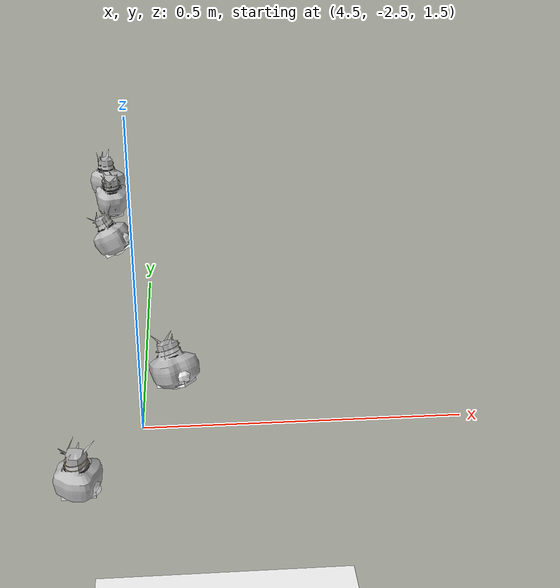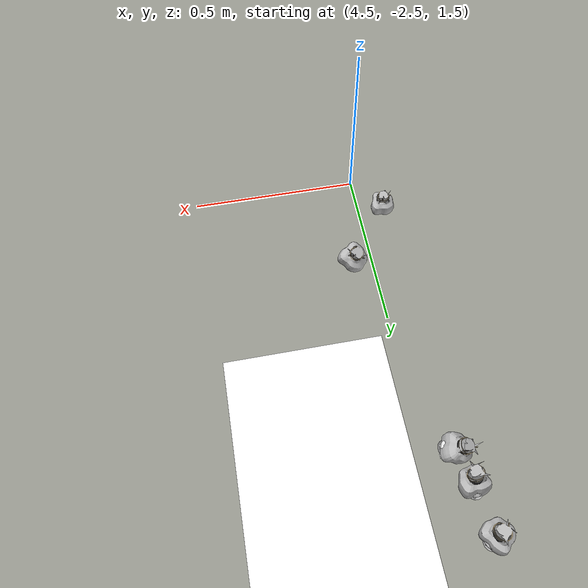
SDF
<sdf version="1.11">
 <world name="peach_orchard">
  <model name="ground">
   <static>true</static>
   <link name="link">
    <visual name="soil">
     <geometry><plane><normal>0 0 1</normal><size>32 22</size></plane></geometry>
     <material>
      <ambient>1 1 1 1</ambient>
      <diffuse>1 1 1 1</diffuse>
      <specular>0.1 0.1 0.1 1</specular>
      <pbr>
       <metal>
        <albedo_map>textures/soil_albedo.png</albedo_map>
        <normal_map type="tangent">textures/soil_normal.png</normal_map>
        <roughness>0.95</roughness>
        <metalness>0</metalness>
       </metal>
      </pbr>
     </material>
    </visual>
    <collision name="c_soil">
     <geometry><plane><normal>0 0 1</normal><size>32 22</size></plane></geometry>
    </collision>
   </link>
  </model>
  <model name="peach_tree_r3_t2_00">
   <pose>4.55 -2.25901 1.42221 0 0.351696 2.20699</pose>
   <static>true</static>
   <link name="bag">
    <visual name="bag_mesh">
     <pose>0 0 0.0402073 0 0 0</pose>
     <geometry>
      <mesh><uri>model://peach_sim/meshes/bagged_peach.glb</uri><scale>1.08824 1.2067 0.913803</scale></mesh>
     </geometry>
    </visual>
    <visual name="body">
     <pose>0 0 0.0222073 0 0 0</pose>
     <geometry><ellipsoid><radii>0.040809 0.0313742 0.0239839</radii></ellipsoid></geometry>
     <material>
      <ambient>1 1 1 1</ambient>
      <diffuse>1 1 1 1</diffuse>
      <specular>0.1 0.1 0.1 1</specular>
      <pbr>
       <metal>
        <albedo_map>textures/paper_bag_albedo.png</albedo_map>
        <normal_map type="tangent">textures/paper_bag_normal.png</normal_map>
        <roughness>0.72</roughness>
        <metalness>0</metalness>
       </metal>
      </pbr>
     </material>
    </visual>
    <visual name="bottom_fold">
     <pose>0 0 0.012 0 0 0.35</pose>
     <geometry><box><size>0.063254 0.0360804 0.022</size></box></geometry>
     <material>
      <ambient>1 1 1 1</ambient>
      <diffuse>1 1 1 1</diffuse>
      <specular>0.1 0.1 0.1 1</specular>
      <pbr>
       <metal>
        <albedo_map>textures/paper_bag_albedo.png</albedo_map>
        <normal_map type="tangent">textures/paper_bag_normal.png</normal_map>
        <roughness>0.8</roughness>
        <metalness>0</metalness>
       </metal>
      </pbr>
     </material>
    </visual>
    <visual name="fruit">
     <pose>0 0 0.0187764 0 0 0</pose>
     <geometry><sphere><radius>0.0257675</radius></sphere></geometry>
     <material>
      <ambient>1 1 1 1</ambient>
      <diffuse>1 1 1 1</diffuse>
      <specular>0.1 0.1 0.1 1</specular>
      <pbr>
       <metal>
        <albedo_map>textures/fruit_skin_albedo.png</albedo_map>
        <normal_map type="tangent">textures/fruit_skin_normal.png</normal_map>
        <roughness>0.55</roughness>
        <metalness>0</metalness>
       </metal>
      </pbr>
     </material>
    </visual>
    <visual name="neck">
     <pose>0 0 0.0534146 0 0 0</pose>
     <geometry><cylinder><radius>0.013</radius><length>0.018</length></cylinder></geometry>
     <material>
      <ambient>1 1 1 1</ambient>
      <diffuse>1 1 1 1</diffuse>
      <specular>0.1 0.1 0.1 1</specular>
      <pbr>
       <metal>
        <albedo_map>textures/paper_bag_albedo.png</albedo_map>
        <normal_map type="tangent">textures/paper_bag_normal.png</normal_map>
        <roughness>0.75</roughness>
        <metalness>0</metalness>
       </metal>
      </pbr>
     </material>
    </visual>
    <visual name="gather">
     <pose>0 0 0.0344146 0 0 0</pose>
     <geometry><cylinder><radius>0.019</radius><length>0.02</length></cylinder></geometry>
     <material>
      <ambient>1 1 1 1</ambient>
      <diffuse>1 1 1 1</diffuse>
      <specular>0.1 0.1 0.1 1</specular>
      <pbr>
       <metal>
        <albedo_map>textures/paper_bag_albedo.png</albedo_map>
        <normal_map type="tangent">textures/paper_bag_normal.png</normal_map>
        <roughness>0.8</roughness>
        <metalness>0</metalness>
       </metal>
      </pbr>
     </material>
    </visual>
    <visual name="inner_paper">
     <pose>0 0 0.0584146 0 0 0</pose>
     <geometry><cylinder><radius>0.01</radius><length>0.008</length></cylinder></geometry>
     <material>
      <ambient>0.180392 0.14902 0.133333 1</ambient>
      <diffuse>0.180392 0.14902 0.133333 1</diffuse>
      <specular>0.1 0.1 0.1 1</specular>
     </material>
    </visual>
    <visual name="wire_0">
     <pose>0 0 0.0484146 0 0 0</pose>
     <geometry><cylinder><radius>0.0205</radius><length>0.0035</length></cylinder></geometry>
     <material>
      <ambient>0.25 0.25 0.25 1</ambient>
      <diffuse>0.25 0.25 0.25 1</diffuse>
      <specular>0.1 0.1 0.1 1</specular>
     </material>
    </visual>
    <visual name="wire_1">
     <pose>0 0 0.0554146 0 0 0</pose>
     <geometry><cylinder><radius>0.0205</radius><length>0.0035</length></cylinder></geometry>
     <material>
      <ambient>0.25 0.25 0.25 1</ambient>
      <diffuse>0.25 0.25 0.25 1</diffuse>
      <specular>0.1 0.1 0.1 1</specular>
     </material>
    </visual>
    <visual name="wire_tail">
     <pose>0.01 0 0.0564146 0 0.521618 0</pose>
     <geometry><cylinder><radius>0.0012</radius><length>0.026</length></cylinder></geometry>
     <material>
      <ambient>0.25 0.25 0.25 1</ambient>
      <diffuse>0.25 0.25 0.25 1</diffuse>
      <specular>0.1 0.1 0.1 1</specular>
     </material>
    </visual>
    <collision name="c_body">
     <pose>0 0 0.0222073 0 0 0</pose>
     <geometry><cylinder><radius>0.040809</radius><length>0.0444146</length></cylinder></geometry>
    </collision>
   </link>
  </model>
  <model name="peach_tree_r3_t2_04">
   <pose>4.38905 -2.48202 1.36413 0 0.0106714 2.83871</pose>
   <static>true</static>
   <link name="bag">
    <visual name="bag_mesh">
     <pose>0 0 0.0392174 0 0 0</pose>
     <geometry>
      <mesh><uri>model://peach_sim/meshes/bagged_peach.glb</uri><scale>0.959384 1.14505 0.891304</scale></mesh>
     </geometry>
    </visual>
    <visual name="body">
     <pose>0 0 0.0212174 0 0 0</pose>
     <geometry><ellipsoid><radii>0.0359769 0.0297714 0.0229148</radii></ellipsoid></geometry>
     <material>
      <ambient>1 1 1 1</ambient>
      <diffuse>1 1 1 1</diffuse>
      <specular>0.1 0.1 0.1 1</specular>
      <pbr>
       <metal>
        <albedo_map>textures/paper_bag_albedo.png</albedo_map>
        <normal_map type="tangent">textures/paper_bag_normal.png</normal_map>
        <roughness>0.72</roughness>
        <metalness>0</metalness>
       </metal>
      </pbr>
     </material>
    </visual>
    <visual name="bottom_fold">
     <pose>0 0 0.012 0 0 0.35</pose>
     <geometry><box><size>0.0557642 0.0342371 0.022</size></box></geometry>
     <material>
      <ambient>1 1 1 1</ambient>
      <diffuse>1 1 1 1</diffuse>
      <specular>0.1 0.1 0.1 1</specular>
      <pbr>
       <metal>
        <albedo_map>textures/paper_bag_albedo.png</albedo_map>
        <normal_map type="tangent">textures/paper_bag_normal.png</normal_map>
        <roughness>0.8</roughness>
        <metalness>0</metalness>
       </metal>
      </pbr>
     </material>
    </visual>
    <visual name="fruit">
     <pose>0 0 0.0191488 0 0 0</pose>
     <geometry><sphere><radius>0.0261548</radius></sphere></geometry>
     <material>
      <ambient>1 1 1 1</ambient>
      <diffuse>1 1 1 1</diffuse>
      <specular>0.1 0.1 0.1 1</specular>
      <pbr>
       <metal>
        <albedo_map>textures/fruit_skin_albedo.png</albedo_map>
        <normal_map type="tangent">textures/fruit_skin_normal.png</normal_map>
        <roughness>0.55</roughness>
        <metalness>0</metalness>
       </metal>
      </pbr>
     </material>
    </visual>
    <visual name="neck">
     <pose>0 0 0.0514348 0 0 0</pose>
     <geometry><cylinder><radius>0.013</radius><length>0.018</length></cylinder></geometry>
     <material>
      <ambient>1 1 1 1</ambient>
      <diffuse>1 1 1 1</diffuse>
      <specular>0.1 0.1 0.1 1</specular>
      <pbr>
       <metal>
        <albedo_map>textures/paper_bag_albedo.png</albedo_map>
        <normal_map type="tangent">textures/paper_bag_normal.png</normal_map>
        <roughness>0.75</roughness>
        <metalness>0</metalness>
       </metal>
      </pbr>
     </material>
    </visual>
    <visual name="gather">
     <pose>0 0 0.0324348 0 0 0</pose>
     <geometry><cylinder><radius>0.019</radius><length>0.02</length></cylinder></geometry>
     <material>
      <ambient>1 1 1 1</ambient>
      <diffuse>1 1 1 1</diffuse>
      <specular>0.1 0.1 0.1 1</specular>
      <pbr>
       <metal>
        <albedo_map>textures/paper_bag_albedo.png</albedo_map>
        <normal_map type="tangent">textures/paper_bag_normal.png</normal_map>
        <roughness>0.8</roughness>
        <metalness>0</metalness>
       </metal>
      </pbr>
     </material>
    </visual>
    <visual name="inner_paper">
     <pose>0 0 0.0564348 0 0 0</pose>
     <geometry><cylinder><radius>0.01</radius><length>0.008</length></cylinder></geometry>
     <material>
      <ambient>0.180392 0.14902 0.133333 1</ambient>
      <diffuse>0.180392 0.14902 0.133333 1</diffuse>
      <specular>0.1 0.1 0.1 1</specular>
     </material>
    </visual>
    <visual name="wire_0">
     <pose>0 0 0.0464348 0 0 0</pose>
     <geometry><cylinder><radius>0.0205</radius><length>0.0035</length></cylinder></geometry>
     <material>
      <ambient>0.25 0.25 0.25 1</ambient>
      <diffuse>0.25 0.25 0.25 1</diffuse>
      <specular>0.1 0.1 0.1 1</specular>
     </material>
    </visual>
    <visual name="wire_1">
     <pose>0 0 0.0534348 0 0 0</pose>
     <geometry><cylinder><radius>0.0205</radius><length>0.0035</length></cylinder></geometry>
     <material>
      <ambient>0.25 0.25 0.25 1</ambient>
      <diffuse>0.25 0.25 0.25 1</diffuse>
      <specular>0.1 0.1 0.1 1</specular>
     </material>
    </visual>
    <visual name="wire_tail">
     <pose>0.01 0 0.0544348 0 0.521618 0</pose>
     <geometry><cylinder><radius>0.0012</radius><length>0.026</length></cylinder></geometry>
     <material>
      <ambient>0.25 0.25 0.25 1</ambient>
      <diffuse>0.25 0.25 0.25 1</diffuse>
      <specular>0.1 0.1 0.1 1</specular>
     </material>
    </visual>
    <collision name="c_body">
     <pose>0 0 0.0212174 0 0 0</pose>
     <geometry><cylinder><radius>0.0359769</radius><length>0.0424348</length></cylinder></geometry>
    </collision>
   </link>
  </model>
  <model name="peach_tree_r3_t2_07">
   <pose>4.41414 -1.62237 1.39681 0 0.495921 2.79849</pose>
   <static>true</static>
   <link name="bag">
    <visual name="bag_mesh">
     <pose>0 0 0.045447 0 0 0</pose>
     <geometry>
      <mesh><uri>model://peach_sim/meshes/bagged_peach.glb</uri><scale>1.09213 1.17779 1.03289</scale></mesh>
     </geometry>
    </visual>
    <visual name="body">
     <pose>0 0 0.027447 0 0 0</pose>
     <geometry><ellipsoid><radii>0.0409548 0.0306226 0.0296427</radii></ellipsoid></geometry>
     <material>
      <ambient>1 1 1 1</ambient>
      <diffuse>1 1 1 1</diffuse>
      <specular>0.1 0.1 0.1 1</specular>
      <pbr>
       <metal>
        <albedo_map>textures/paper_bag_albedo.png</albedo_map>
        <normal_map type="tangent">textures/paper_bag_normal.png</normal_map>
        <roughness>0.72</roughness>
        <metalness>0</metalness>
       </metal>
      </pbr>
     </material>
    </visual>
    <visual name="bottom_fold">
     <pose>0 0 0.012 0 0 0.35</pose>
     <geometry><box><size>0.06348 0.035216 0.022</size></box></geometry>
     <material>
      <ambient>1 1 1 1</ambient>
      <diffuse>1 1 1 1</diffuse>
      <specular>0.1 0.1 0.1 1</specular>
      <pbr>
       <metal>
        <albedo_map>textures/paper_bag_albedo.png</albedo_map>
        <normal_map type="tangent">textures/paper_bag_normal.png</normal_map>
        <roughness>0.8</roughness>
        <metalness>0</metalness>
       </metal>
      </pbr>
     </material>
    </visual>
    <visual name="fruit">
     <pose>0 0 0.0201282 0 0 0</pose>
     <geometry><sphere><radius>0.0271733</radius></sphere></geometry>
     <material>
      <ambient>1 1 1 1</ambient>
      <diffuse>1 1 1 1</diffuse>
      <specular>0.1 0.1 0.1 1</specular>
      <pbr>
       <metal>
        <albedo_map>textures/fruit_skin_albedo.png</albedo_map>
        <normal_map type="tangent">textures/fruit_skin_normal.png</normal_map>
        <roughness>0.55</roughness>
        <metalness>0</metalness>
       </metal>
      </pbr>
     </material>
    </visual>
    <visual name="neck">
     <pose>0 0 0.0638939 0 0 0</pose>
     <geometry><cylinder><radius>0.013</radius><length>0.018</length></cylinder></geometry>
     <material>
      <ambient>1 1 1 1</ambient>
      <diffuse>1 1 1 1</diffuse>
      <specular>0.1 0.1 0.1 1</specular>
      <pbr>
       <metal>
        <albedo_map>textures/paper_bag_albedo.png</albedo_map>
        <normal_map type="tangent">textures/paper_bag_normal.png</normal_map>
        <roughness>0.75</roughness>
        <metalness>0</metalness>
       </metal>
      </pbr>
     </material>
    </visual>
    <visual name="gather">
     <pose>0 0 0.0448939 0 0 0</pose>
     <geometry><cylinder><radius>0.019</radius><length>0.02</length></cylinder></geometry>
     <material>
      <ambient>1 1 1 1</ambient>
      <diffuse>1 1 1 1</diffuse>
      <specular>0.1 0.1 0.1 1</specular>
      <pbr>
       <metal>
        <albedo_map>textures/paper_bag_albedo.png</albedo_map>
        <normal_map type="tangent">textures/paper_bag_normal.png</normal_map>
        <roughness>0.8</roughness>
        <metalness>0</metalness>
       </metal>
      </pbr>
     </material>
    </visual>
    <visual name="inner_paper">
     <pose>0 0 0.0688939 0 0 0</pose>
     <geometry><cylinder><radius>0.01</radius><length>0.008</length></cylinder></geometry>
     <material>
      <ambient>0.180392 0.14902 0.133333 1</ambient>
      <diffuse>0.180392 0.14902 0.133333 1</diffuse>
      <specular>0.1 0.1 0.1 1</specular>
     </material>
    </visual>
    <visual name="wire_0">
     <pose>0 0 0.0588939 0 0 0</pose>
     <geometry><cylinder><radius>0.0205</radius><length>0.0035</length></cylinder></geometry>
     <material>
      <ambient>0.25 0.25 0.25 1</ambient>
      <diffuse>0.25 0.25 0.25 1</diffuse>
      <specular>0.1 0.1 0.1 1</specular>
     </material>
    </visual>
    <visual name="wire_1">
     <pose>0 0 0.0658939 0 0 0</pose>
     <geometry><cylinder><radius>0.0205</radius><length>0.0035</length></cylinder></geometry>
     <material>
      <ambient>0.25 0.25 0.25 1</ambient>
      <diffuse>0.25 0.25 0.25 1</diffuse>
      <specular>0.1 0.1 0.1 1</specular>
     </material>
    </visual>
    <visual name="wire_tail">
     <pose>0.01 0 0.0668939 0 0.521618 0</pose>
     <geometry><cylinder><radius>0.0012</radius><length>0.026</length></cylinder></geometry>
     <material>
      <ambient>0.25 0.25 0.25 1</ambient>
      <diffuse>0.25 0.25 0.25 1</diffuse>
      <specular>0.1 0.1 0.1 1</specular>
     </material>
    </visual>
    <collision name="c_body">
     <pose>0 0 0.027447 0 0 0</pose>
     <geometry><cylinder><radius>0.0409548</radius><length>0.0548939</length></cylinder></geometry>
    </collision>
   </link>
  </model>
  <model name="peach_tree_r3_t2_08">
   <pose>4.39508 -1.50669 1.45 0 0.208227 -1.49646</pose>
   <static>true</static>
   <link name="bag">
    <visual name="bag_mesh">
     <pose>0 0 0.0488015 0 0 -0</pose>
     <geometry>
      <mesh><uri>model://peach_sim/meshes/bagged_peach.glb</uri><scale>0.952865 1.14465 1.10913</scale></mesh>
     </geometry>
    </visual>
    <visual name="body">
     <pose>0 0 0.0308015 0 0 0</pose>
     <geometry><ellipsoid><radii>0.0357324 0.029761 0.0332657</radii></ellipsoid></geometry>
     <material>
      <ambient>1 1 1 1</ambient>
      <diffuse>1 1 1 1</diffuse>
      <specular>0.1 0.1 0.1 1</specular>
      <pbr>
       <metal>
        <albedo_map>textures/paper_bag_albedo.png</albedo_map>
        <normal_map type="tangent">textures/paper_bag_normal.png</normal_map>
        <roughness>0.72</roughness>
        <metalness>0</metalness>
       </metal>
      </pbr>
     </material>
    </visual>
    <visual name="bottom_fold">
     <pose>0 0 0.012 0 0 0.35</pose>
     <geometry><box><size>0.0553853 0.0342252 0.022</size></box></geometry>
     <material>
      <ambient>1 1 1 1</ambient>
      <diffuse>1 1 1 1</diffuse>
      <specular>0.1 0.1 0.1 1</specular>
      <pbr>
       <metal>
        <albedo_map>textures/paper_bag_albedo.png</albedo_map>
        <normal_map type="tangent">textures/paper_bag_normal.png</normal_map>
        <roughness>0.8</roughness>
        <metalness>0</metalness>
       </metal>
      </pbr>
     </material>
    </visual>
    <visual name="fruit">
     <pose>0 0 0.0173191 0 0 0</pose>
     <geometry><sphere><radius>0.0242518</radius></sphere></geometry>
     <material>
      <ambient>1 1 1 1</ambient>
      <diffuse>1 1 1 1</diffuse>
      <specular>0.1 0.1 0.1 1</specular>
      <pbr>
       <metal>
        <albedo_map>textures/fruit_skin_albedo.png</albedo_map>
        <normal_map type="tangent">textures/fruit_skin_normal.png</normal_map>
        <roughness>0.55</roughness>
        <metalness>0</metalness>
       </metal>
      </pbr>
     </material>
    </visual>
    <visual name="neck">
     <pose>0 0 0.0706031 0 0 0</pose>
     <geometry><cylinder><radius>0.013</radius><length>0.018</length></cylinder></geometry>
     <material>
      <ambient>1 1 1 1</ambient>
      <diffuse>1 1 1 1</diffuse>
      <specular>0.1 0.1 0.1 1</specular>
      <pbr>
       <metal>
        <albedo_map>textures/paper_bag_albedo.png</albedo_map>
        <normal_map type="tangent">textures/paper_bag_normal.png</normal_map>
        <roughness>0.75</roughness>
        <metalness>0</metalness>
       </metal>
      </pbr>
     </material>
    </visual>
    <visual name="gather">
     <pose>0 0 0.0516031 0 0 0</pose>
     <geometry><cylinder><radius>0.019</radius><length>0.02</length></cylinder></geometry>
     <material>
      <ambient>1 1 1 1</ambient>
      <diffuse>1 1 1 1</diffuse>
      <specular>0.1 0.1 0.1 1</specular>
      <pbr>
       <metal>
        <albedo_map>textures/paper_bag_albedo.png</albedo_map>
        <normal_map type="tangent">textures/paper_bag_normal.png</normal_map>
        <roughness>0.8</roughness>
        <metalness>0</metalness>
       </metal>
      </pbr>
     </material>
    </visual>
    <visual name="inner_paper">
     <pose>0 0 0.0756031 0 0 0</pose>
     <geometry><cylinder><radius>0.01</radius><length>0.008</length></cylinder></geometry>
     <material>
      <ambient>0.180392 0.14902 0.133333 1</ambient>
      <diffuse>0.180392 0.14902 0.133333 1</diffuse>
      <specular>0.1 0.1 0.1 1</specular>
     </material>
    </visual>
    <visual name="wire_0">
     <pose>0 0 0.0656031 0 0 0</pose>
     <geometry><cylinder><radius>0.0205</radius><length>0.0035</length></cylinder></geometry>
     <material>
      <ambient>0.25 0.25 0.25 1</ambient>
      <diffuse>0.25 0.25 0.25 1</diffuse>
      <specular>0.1 0.1 0.1 1</specular>
     </material>
    </visual>
    <visual name="wire_1">
     <pose>0 0 0.0726031 0 0 0</pose>
     <geometry><cylinder><radius>0.0205</radius><length>0.0035</length></cylinder></geometry>
     <material>
      <ambient>0.25 0.25 0.25 1</ambient>
      <diffuse>0.25 0.25 0.25 1</diffuse>
      <specular>0.1 0.1 0.1 1</specular>
     </material>
    </visual>
    <visual name="wire_tail">
     <pose>0.01 0 0.0736031 0 0.521618 0</pose>
     <geometry><cylinder><radius>0.0012</radius><length>0.026</length></cylinder></geometry>
     <material>
      <ambient>0.25 0.25 0.25 1</ambient>
      <diffuse>0.25 0.25 0.25 1</diffuse>
      <specular>0.1 0.1 0.1 1</specular>
     </material>
    </visual>
    <collision name="c_body">
     <pose>0 0 0.0308015 0 0 0</pose>
     <geometry><cylinder><radius>0.0357324</radius><length>0.0616031</length></cylinder></geometry>
    </collision>
   </link>
  </model>
  <model name="peach_tree_r3_t2_09">
   <pose>4.37668 -1.38146 1.45 0 0.0129851 -2.5291</pose>
   <static>true</static>
   <link name="bag">
    <visual name="bag_mesh">
     <pose>0 0 0.0465964 0 0 -0</pose>
     <geometry>
      <mesh><uri>model://peach_sim/meshes/bagged_peach.glb</uri><scale>0.965888 1.19401 1.05901</scale></mesh>
     </geometry>
    </visual>
    <visual name="body">
     <pose>0 0 0.0285964 0 0 0</pose>
     <geometry><ellipsoid><radii>0.0362208 0.0310442 0.0308841</radii></ellipsoid></geometry>
     <material>
      <ambient>1 1 1 1</ambient>
      <diffuse>1 1 1 1</diffuse>
      <specular>0.1 0.1 0.1 1</specular>
      <pbr>
       <metal>
        <albedo_map>textures/paper_bag_albedo.png</albedo_map>
        <normal_map type="tangent">textures/paper_bag_normal.png</normal_map>
        <roughness>0.72</roughness>
        <metalness>0</metalness>
       </metal>
      </pbr>
     </material>
    </visual>
    <visual name="bottom_fold">
     <pose>0 0 0.012 0 0 0.35</pose>
     <geometry><box><size>0.0561422 0.0357009 0.022</size></box></geometry>
     <material>
      <ambient>1 1 1 1</ambient>
      <diffuse>1 1 1 1</diffuse>
      <specular>0.1 0.1 0.1 1</specular>
      <pbr>
       <metal>
        <albedo_map>textures/paper_bag_albedo.png</albedo_map>
        <normal_map type="tangent">textures/paper_bag_normal.png</normal_map>
        <roughness>0.8</roughness>
        <metalness>0</metalness>
       </metal>
      </pbr>
     </material>
    </visual>
    <visual name="fruit">
     <pose>0 0 0.0212475 0 0 0</pose>
     <geometry><sphere><radius>0.0283374</radius></sphere></geometry>
     <material>
      <ambient>1 1 1 1</ambient>
      <diffuse>1 1 1 1</diffuse>
      <specular>0.1 0.1 0.1 1</specular>
      <pbr>
       <metal>
        <albedo_map>textures/fruit_skin_albedo.png</albedo_map>
        <normal_map type="tangent">textures/fruit_skin_normal.png</normal_map>
        <roughness>0.55</roughness>
        <metalness>0</metalness>
       </metal>
      </pbr>
     </material>
    </visual>
    <visual name="neck">
     <pose>0 0 0.0661929 0 0 0</pose>
     <geometry><cylinder><radius>0.013</radius><length>0.018</length></cylinder></geometry>
     <material>
      <ambient>1 1 1 1</ambient>
      <diffuse>1 1 1 1</diffuse>
      <specular>0.1 0.1 0.1 1</specular>
      <pbr>
       <metal>
        <albedo_map>textures/paper_bag_albedo.png</albedo_map>
        <normal_map type="tangent">textures/paper_bag_normal.png</normal_map>
        <roughness>0.75</roughness>
        <metalness>0</metalness>
       </metal>
      </pbr>
     </material>
    </visual>
    <visual name="gather">
     <pose>0 0 0.0471929 0 0 0</pose>
     <geometry><cylinder><radius>0.019</radius><length>0.02</length></cylinder></geometry>
     <material>
      <ambient>1 1 1 1</ambient>
      <diffuse>1 1 1 1</diffuse>
      <specular>0.1 0.1 0.1 1</specular>
      <pbr>
       <metal>
        <albedo_map>textures/paper_bag_albedo.png</albedo_map>
        <normal_map type="tangent">textures/paper_bag_normal.png</normal_map>
        <roughness>0.8</roughness>
        <metalness>0</metalness>
       </metal>
      </pbr>
     </material>
    </visual>
    <visual name="inner_paper">
     <pose>0 0 0.0711929 0 0 0</pose>
     <geometry><cylinder><radius>0.01</radius><length>0.008</length></cylinder></geometry>
     <material>
      <ambient>0.180392 0.14902 0.133333 1</ambient>
      <diffuse>0.180392 0.14902 0.133333 1</diffuse>
      <specular>0.1 0.1 0.1 1</specular>
     </material>
    </visual>
    <visual name="wire_0">
     <pose>0 0 0.0611929 0 0 0</pose>
     <geometry><cylinder><radius>0.0205</radius><length>0.0035</length></cylinder></geometry>
     <material>
      <ambient>0.25 0.25 0.25 1</ambient>
      <diffuse>0.25 0.25 0.25 1</diffuse>
      <specular>0.1 0.1 0.1 1</specular>
     </material>
    </visual>
    <visual name="wire_1">
     <pose>0 0 0.0681929 0 0 0</pose>
     <geometry><cylinder><radius>0.0205</radius><length>0.0035</length></cylinder></geometry>
     <material>
      <ambient>0.25 0.25 0.25 1</ambient>
      <diffuse>0.25 0.25 0.25 1</diffuse>
      <specular>0.1 0.1 0.1 1</specular>
     </material>
    </visual>
    <visual name="wire_tail">
     <pose>0.01 0 0.0691929 0 0.521618 0</pose>
     <geometry><cylinder><radius>0.0012</radius><length>0.026</length></cylinder></geometry>
     <material>
      <ambient>0.25 0.25 0.25 1</ambient>
      <diffuse>0.25 0.25 0.25 1</diffuse>
      <specular>0.1 0.1 0.1 1</specular>
     </material>
    </visual>
    <collision name="c_body">
     <pose>0 0 0.0285964 0 0 0</pose>
     <geometry><cylinder><radius>0.0362208</radius><length>0.0571929</length></cylinder></geometry>
    </collision>
   </link>
  </model>
 </world>
</sdf>
